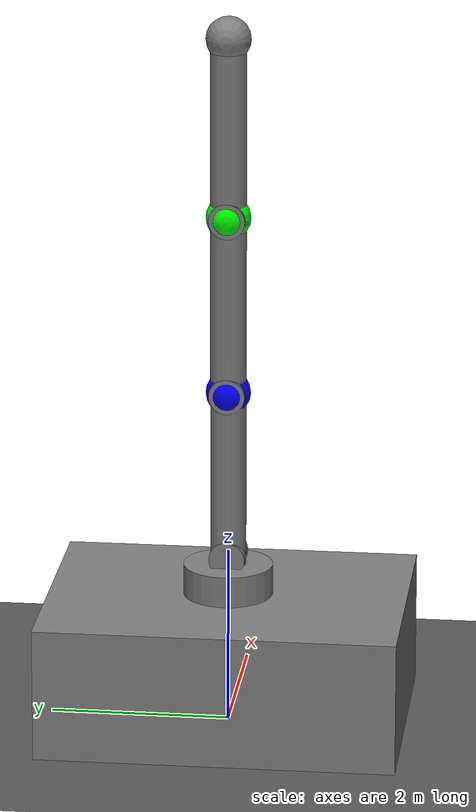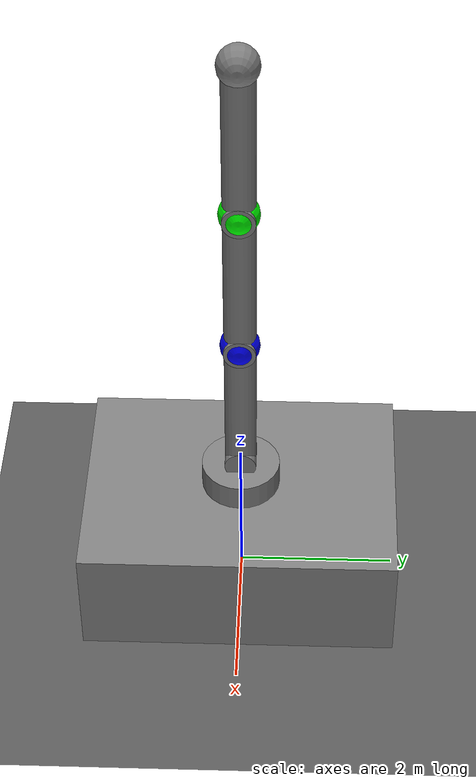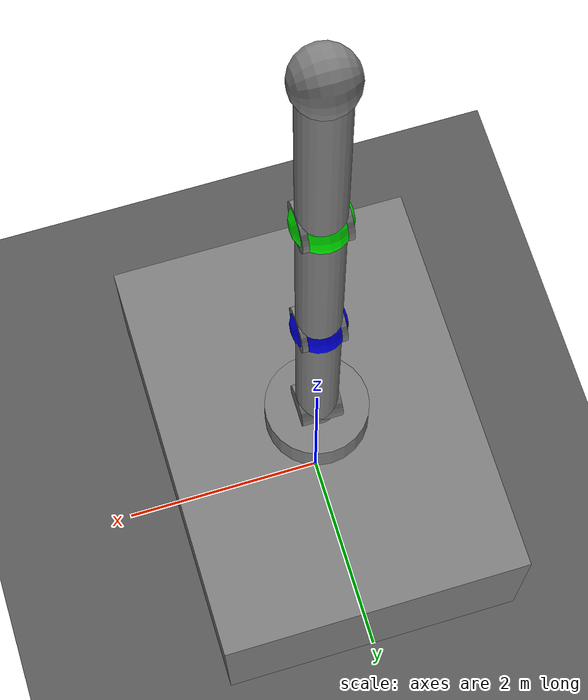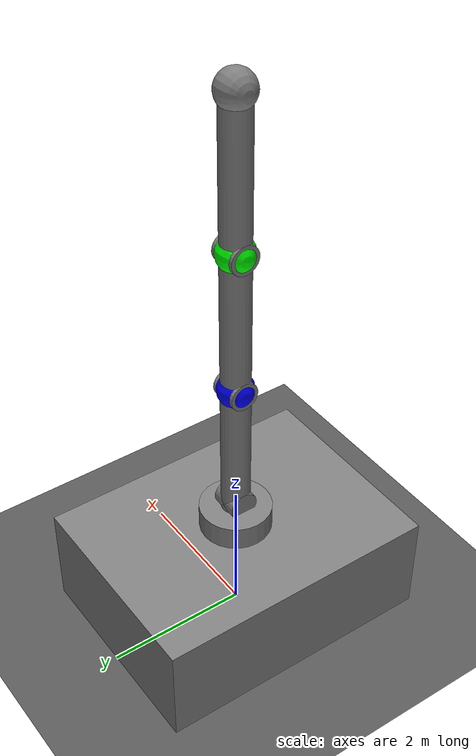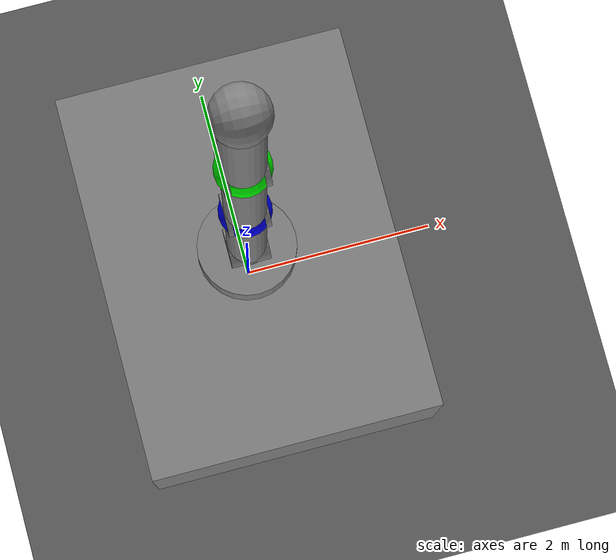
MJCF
<mujoco>

	<option timestep="0.001"/>
	<option gravity="0 0 -9.8"/>

	<asset>
		<texture type="skybox" builtin="gradient" rgb1="1 1 1" rgb2="0.5 0.5 0.5" width="265" height="256"/>
		<texture name="grid" type="2d" builtin="checker" rgb1="0.1 0.1 0.1" rgb2="0.6 0.6 0.6" width="300" height="300"/>
		<material name="grid" texture="grid" texrepeat="10 10" reflectance="0.2"/>
	</asset>

    <worldbody>
        <body name = 'floor' pos = '0 0 0'>
            <geom type = "plane" size = '100 100 1' material="grid"/>
        </body>

<!-- Тележка -->
        <body name = 'cart' pos = '0 0 0.75'>
            <joint name = 'cart' type = 'slide' axis = '0 1 0' />
            <geom type = 'box' size = '1.5 2 0.75'/>

<!-- Маятник -->
            <body name = 'pendulum' pos = '0 0 0.9'>
                <geom type = 'cylinder' size = '0.5 0.2'/>
                <body name = 'base' euler = '0 90 0'>
                    <joint type = 'hinge' pos = '-0.3 0 0'/>
                    <geom type = 'cylinder' size = '0.2 0.2' pos = '-0.3 0 0' />

<!-- Первое звено -->
                    <body name = 'firstLink'>
                        <geom type = 'cylinder' size ='0.2 1' euler = '0 90 0' pos = '-1.2 0 0'/>
                        <body name = 'firstJoint'>
                            <joint type = 'hinge' pos = '-2.2 0 0'/>
                            <geom type = 'cylinder' size = '0.2 0.2' pos = '-2.2 0 0'/>
                            <site name = "firstSite" pos = "-2.2 0 0" size = "0.25" rgba="0 0 1 1"/> <!-- Для снятия данных положения -->

<!-- Второе звено -->
                                <body name = 'secondLink'>
                                    <geom type = 'cylinder' size ='0.2 1' euler = '0 90 0' pos = '-3.2 0 0'/>
                                    <body name = 'secondJoint'>
                                        <joint type = 'hinge' pos = '-4.2 0 0'/>
                                        <geom type = 'cylinder' size = '0.2 0.2' pos = '-4.2 0 0'/>
                                        <site name = "secondSite" pos = "-4.2 0 0" size = "0.25" rgba="0 1 0 1"/> <!-- Для снятия данных положения -->

<!-- Третье звено -->
                                        <body name = 'thirdLink'>
                                            <geom type = 'cylinder' size ='0.2 1' euler = '0 90 0' pos = '-5.2 0 0'/>
                                            <body name = 'lastJoint'>
                                                <geom type = 'sphere' size = '0.25' pos = '-6.2 0 0'/>
                                                <joint type = 'hinge' pos = '-6.2 0 0'/>
                                                <site name = "lastSite" pos = "-6.2 0 0" size = "0.25" rgba="1 0 0 1"/> <!-- Для снятия данных положения -->
                                            </body>
                                        </body>
                                    </body>
                                </body>
                        </body>
                    </body>
                </body>
            </body>
        </body>
    </worldbody>

<!-- Управление тележкой -->
	<actuator>
        <motor name = "cartControl" joint="cart" gear = '100 0 0 0 0 0' ctrlrange="-10000 10000"/>
    </actuator>

</mujoco>
